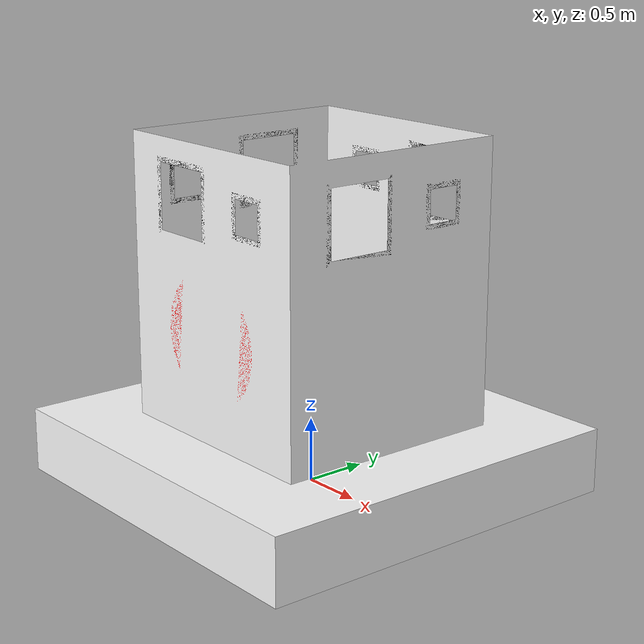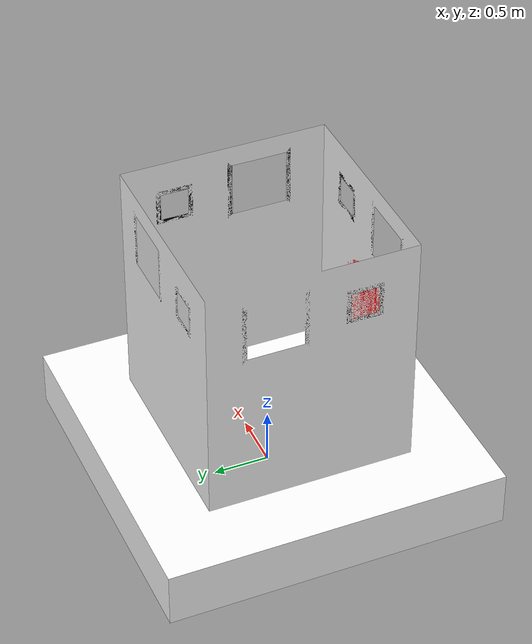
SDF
<?xml version="1.0" ?>
<sdf version="1.4">
  <model name="deliever_buoy">
    <gazebo>
      <static>false</static>
    </gazebo>
    <link name="link">
      <pose>0 0 0 0 0 0</pose>
      <collision name="collision">
        <geometry>
          <mesh>
            <uri>model://deliever_buoy/meshes/detect_and_deliever.dae</uri>
          </mesh>
        </geometry>
      </collision>
      <visual name="visual">
        <geometry>
          <mesh>
            <uri>model://deliever_buoy/meshes/detect_and_deliever.dae</uri>
          </mesh>
        </geometry>
        <material>
          <lighting>1</lighting>
        </material>
      </visual>
      <inertial>
      	<origin
        xyz="0 0 0"
        rpy="0 0 0" />
        <mass>10</mass>
        <inertia>
          <ixx>10</ixx>
          <ixy>0</ixy>
          <ixz>0</ixz>
          <iyy>10</iyy>
          <iyz>0</iyz>
          <izz>10</izz>
        </inertia>
      </inertial>
    </link>
    <plugin name="BuoyancyPlugin" filename="libbuoyancy_gazebo_plugin.so">
      <fluid_density>1000</fluid_density>
      <fluid_level>0.0</fluid_level>
      <fluid_drag>50</fluid_drag>
      <link>
        <name>link</name>
        <center_of_volume>0 0 0.1</center_of_volume>
        <area>0.1</area>
        <height>0.3</height>
      </link>
    </plugin>
  </model>
</sdf>
